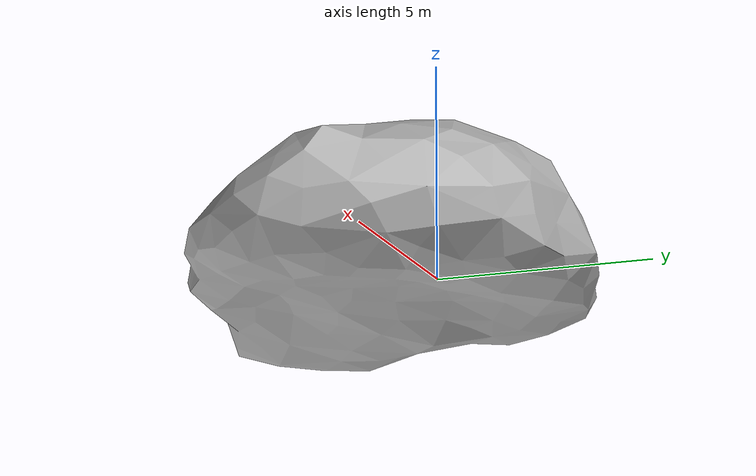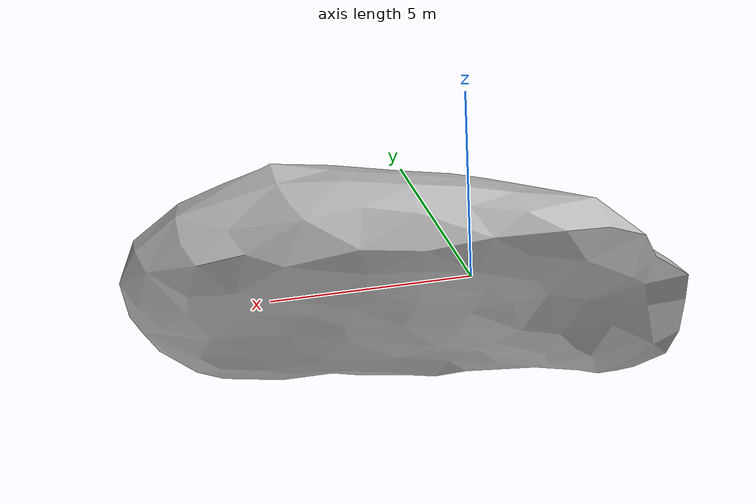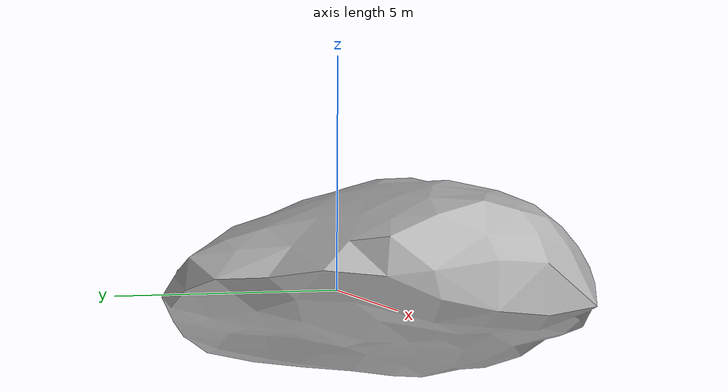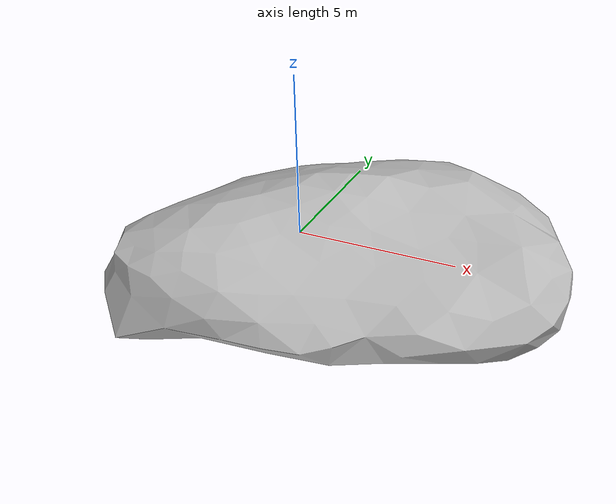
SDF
<sdf version="1.7">
<model name="boulder_2">
    <static>true</static>
    <link name="boulder_2">
        <pose>0 0 0 0 0 0</pose>
        <collision name="boulder_2_collision">
            <geometry>
                <mesh>
                    <uri>model://boulder_2/meshes/boulder_2.dae</uri>
                </mesh>
            </geometry>
        </collision>
        <visual name="boulder_2_visual">
            <geometry>
                <mesh>
                    <uri>model://boulder_2/meshes/boulder_2.dae</uri>
                </mesh>
            </geometry>
        </visual>
    </link>
</model>
</sdf>
